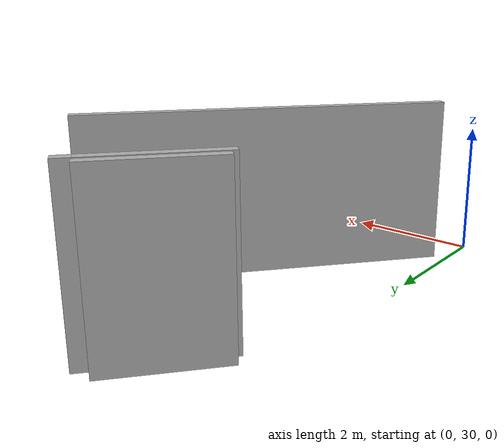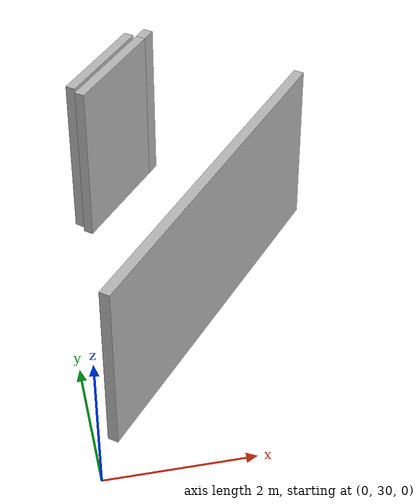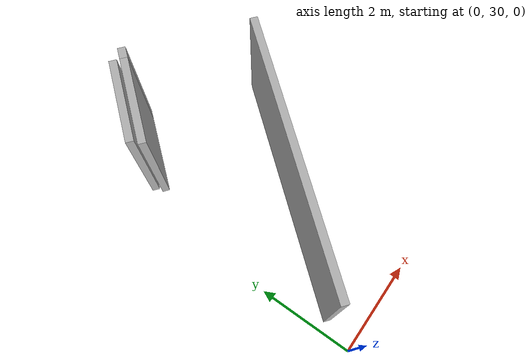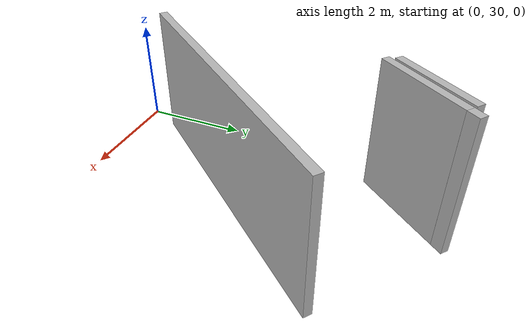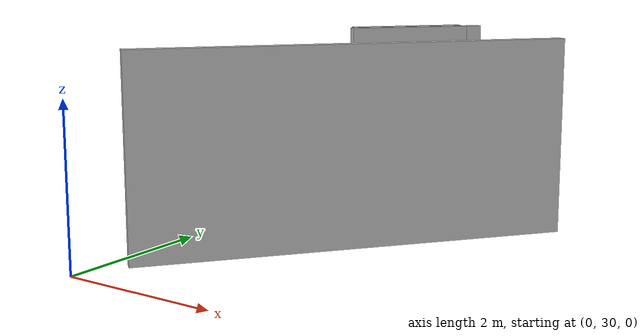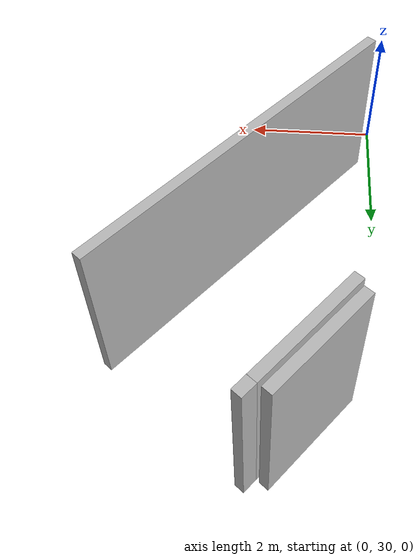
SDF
<?xml version="1.0" ?>
<sdf version="1.6">
  <model name="sps_0700">
    <pose frame="">0 0 0 0 -0 0</pose>
    <static>1</static>
    <self_collide>0</self_collide>
    <allow_auto_disable>0</allow_auto_disable>
    <link name="Wall522">
      <kinematic>0</kinematic>
      <gravity>1</gravity>
      <self_collide>0</self_collide>
      <collision name="collision">
        <geometry>
          <box>
            <size>1.75022 0.15 2.5</size>
          </box>
        </geometry>
        <pose frame="">0 0 0 0 -0 0</pose>
      </collision>
      <visual name="visual">
        <geometry>
          <box>
            <size>1.75022 0.15 2.5</size>
          </box>
        </geometry>
        <pose frame="">0 0 0 0 -0 0</pose>
        <cast_shadows>1</cast_shadows>
        <transparency>0.0</transparency>
      </visual>
      <pose frame="">1.09167 35.6105 1.25 0 0 -2.25926</pose>
    </link>
    <link name="Wall1869">
      <kinematic>0</kinematic>
      <gravity>1</gravity>
      <self_collide>0</self_collide>
      <collision name="collision">
        <geometry>
          <box>
            <size>1.66703 0.15 2.5</size>
          </box>
        </geometry>
        <pose frame="">0 0 0 0 -0 0</pose>
      </collision>
      <visual name="visual">
        <geometry>
          <box>
            <size>1.66703 0.15 2.5</size>
          </box>
        </geometry>
        <pose frame="">0 0 0 0 -0 0</pose>
        <cast_shadows>1</cast_shadows>
        <transparency>0.0</transparency>
      </visual>
      <pose frame="">0.963157 35.7696 1.25 0 -0 0.882766</pose>
    </link>
    <link name="Wall2206">
      <kinematic>0</kinematic>
      <gravity>1</gravity>
      <self_collide>0</self_collide>
      <collision name="collision">
        <geometry>
          <box>
            <size>0.228669 0.15 2.5</size>
          </box>
        </geometry>
        <pose frame="">0 0 0 0 -0 0</pose>
      </collision>
      <visual name="visual">
        <geometry>
          <box>
            <size>0.228669 0.15 2.5</size>
          </box>
        </geometry>
        <pose frame="">0 0 0 0 -0 0</pose>
        <cast_shadows>1</cast_shadows>
        <transparency>0.0</transparency>
      </visual>
      <pose frame="">1.72005 36.3748 1.25 0 0 -2.25638</pose>
    </link>
    <link name="Wall2207">
      <kinematic>0</kinematic>
      <gravity>1</gravity>
      <self_collide>0</self_collide>
      <collision name="collision">
        <geometry>
          <box>
            <size>5.47813 0.15 2.5</size>
          </box>
        </geometry>
        <pose frame="">0 0 0 0 -0 0</pose>
      </collision>
      <visual name="visual">
        <geometry>
          <box>
            <size>5.47813 0.15 2.5</size>
          </box>
        </geometry>
        <pose frame="">0 0 0 0 -0 0</pose>
        <cast_shadows>1</cast_shadows>
        <transparency>0.0</transparency>
      </visual>
      <pose frame="">1.98247 32.7586 1.25 0 -0 0.882739</pose>
    </link>
  </model>
</sdf>
